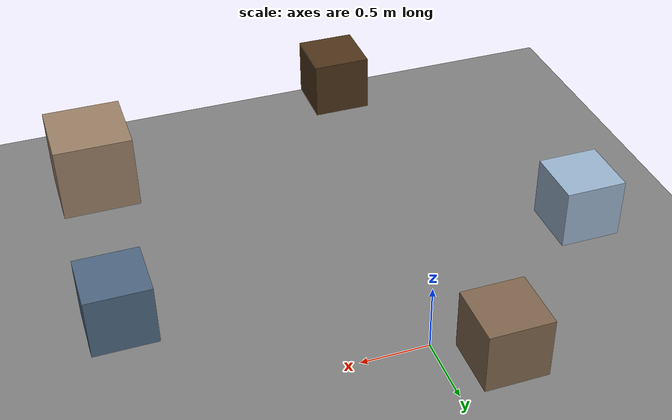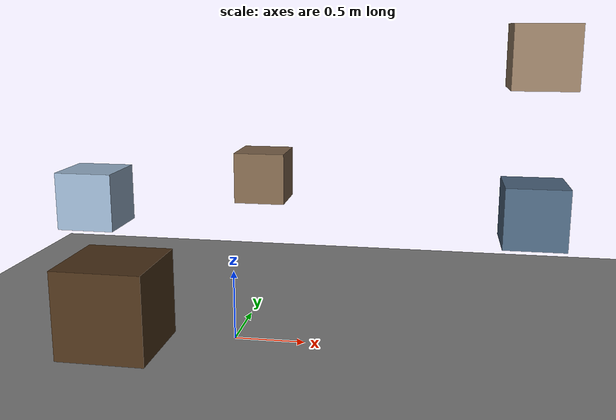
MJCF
<mujoco>
    <compiler angle="radian" meshdir="meshes" autolimits="true" />
    <!-- density="1.225" viscosity="1.8e-5" -->
    <option timestep="0.01" gravity="0 0 -9.81" integrator="implicitfast" />
    <asset>
        <mesh name="tetrahedron" vertex="0 0 0 1 0 0 0 1 0 0 0 1" />
        <texture type="skybox" file="../MJCF/asset/desert.png"
            gridsize="3 4" gridlayout=".U..LFRB.D.." />
        <texture name="plane" type="2d" builtin="checker" rgb1=".1 .1 .1" rgb2=".9 .9 .9"
            width="512" height="512" mark="cross" markrgb=".8 .8 .8" />
        <material name="plane" reflectance="0.3" texture="plane" texrepeat="1 1" texuniform="true" />
    </asset>

    <worldbody>
        <geom name="floor" pos="0 0 0" size="0 0 .25" type="plane" material="plane"
            condim="3" />
        <light directional="true" ambient=".3 .3 .3" pos="30 30 30" dir="0 -.5 -1"
            diffuse=".5 .5 .5" specular=".5 .5 .5" />

        <camera name="look_box" mode="targetbody" target="box1" pos="0 0 0.2" />

        <body name="box1" pos="0 1 1">
            <freejoint />
            <geom name="box1" type="box" mass="1" size="0.2 0.2 0.2" rgba=".5 .4 .3 1" />
        </body>

        <body name="box2" pos="2 0 1">
            <freejoint />
            <geom name="box2" type="box" mass="1" size="0.2 0.2 0.2" rgba=".3 .4 .5 1" />
        </body>

        <body name="box3" pos="2 0 2">
            <freejoint />
            <geom name="box3" type="box" mass="1" size="0.2 0.2 0.2" rgba=".6 .5 .4 1" />
        </body>

        <body name="box4" pos="0 -2 1">
            <freejoint />
            <geom name="box4" type="box" mass="1" size="0.2 0.2 0.2" rgba=".3 .2 .1 1" />
        </body>

        <body name="box5" pos="-1 0 1">
            <freejoint />
            <geom name="box5" type="box" mass="1" size="0.2 0.2 0.2" rgba=".6 .7 .8 1" />
        </body>
    </worldbody>

</mujoco>
